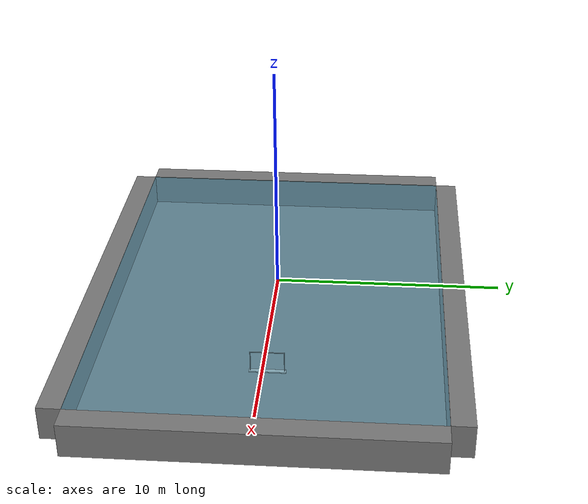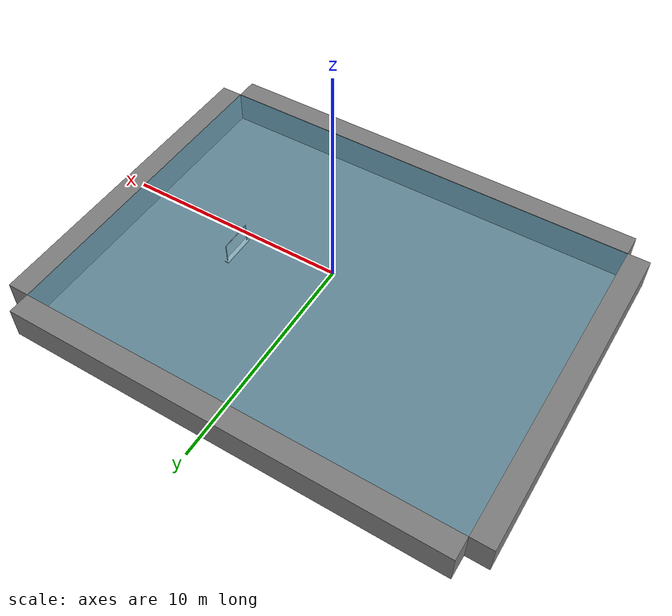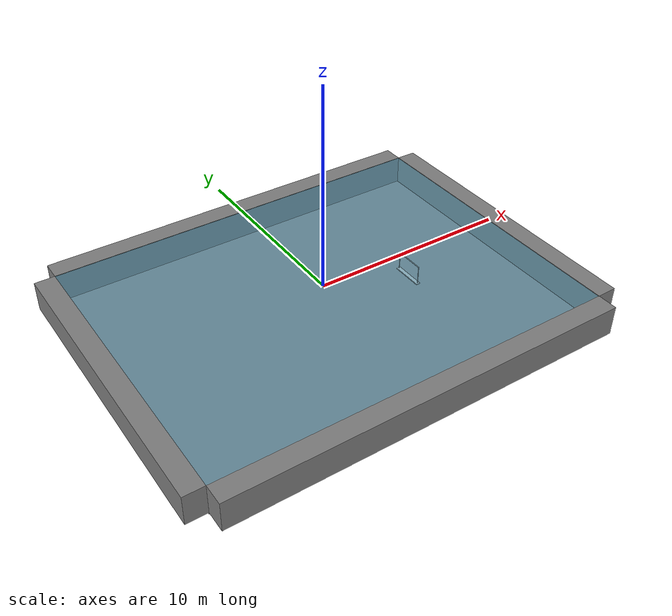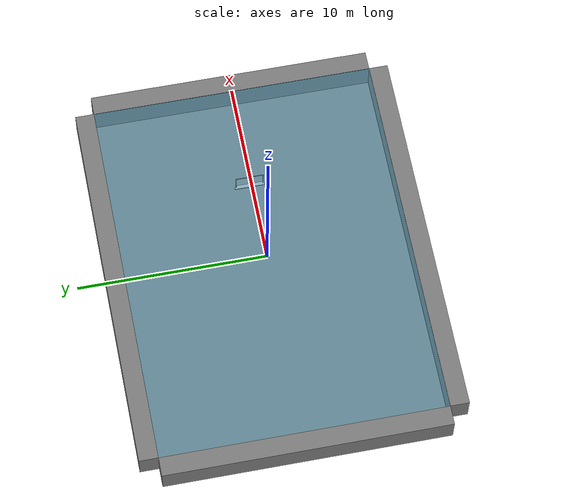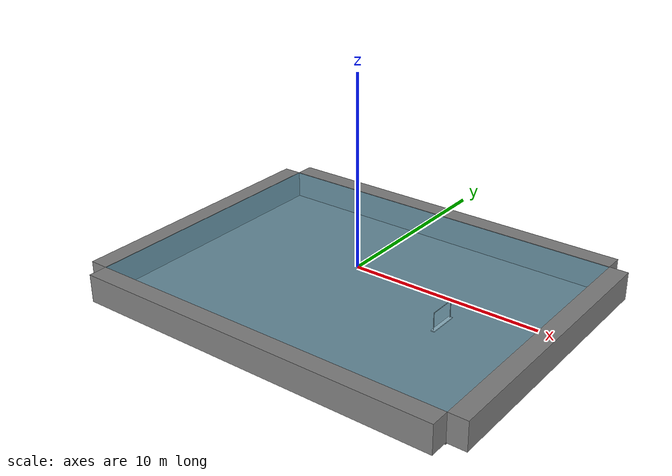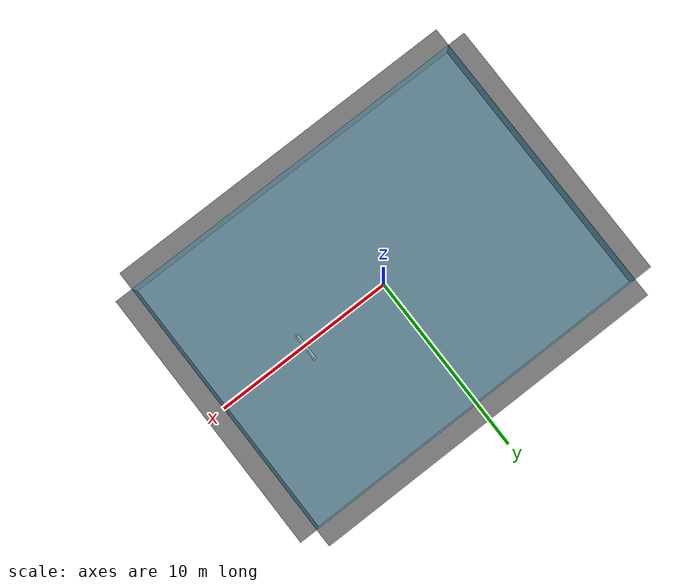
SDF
<?xml version="1.0" ?>
<sdf version="1.6">
  <world name="ocean">

    <scene>
      <sky></sky>
      <ambient>0.525 0.96 0.96 0.025</ambient>
      <background>0.525 0.96 0.96 0.025</background>
      <grid>false</grid>
      <fog>
        <color>0.525 0.96 0.96 0.2</color>
        <type>linear</type>
        <density>0.02</density>
        <start>0.5</start>
        <end>20.0</end>
      </fog>
    </scene>

    <physics name="10ms" type="ode">
      <max_step_size>0.01</max_step_size>
      <real_time_factor>1.0</real_time_factor>
    </physics>
    <plugin
      filename="gz-sim-physics-system"
      name="gz::sim::systems::Physics">
    </plugin>

    <plugin
      filename="gz-sim-sensors-system"
      name="gz::sim::systems::Sensors">
      <render_engine>ogre2</render_engine>
    </plugin>

    <plugin
      filename="gz-sim-user-commands-system"
      name="gz::sim::systems::UserCommands">
    </plugin>
    <plugin
      filename="gz-sim-scene-broadcaster-system"
      name="gz::sim::systems::SceneBroadcaster">
    </plugin>

    <plugin
      filename="gz-sim-imu-system"
      name="gz::sim::systems::Imu">
    </plugin>

    <plugin filename="gz-sim-buoyancy-system"
        name="gz::sim::systems::Buoyancy">

        <graded_buoyancy>
          <default_density>1000</default_density>
          <density_change>
            <above_depth>0</above_depth>
            <density>1</density>
          </density_change>
      </graded_buoyancy>
    </plugin>

    <plugin
      filename="gz-sim-contact-system"
      name="gz::sim::systems::Contact">
    </plugin>

    <plugin
      filename="gz-sim-forcetorque-system"
      name="gz::sim::systems::ForceTorque">
    </plugin>

    <plugin
      filename="gz-sim-particle-emitter-system"
      name="gz::sim::systems::ParticleEmitter">
    </plugin>

    <light type="directional" name="sun">
      <cast_shadows>true</cast_shadows>
      <pose>0 0 5 0 0 0</pose>
      <diffuse>1 1 1 1</diffuse>
      <specular>0.5 0.5 0.5 1</specular>
      <attenuation>
        <range>1000</range>
        <constant>0.9</constant>
        <linear>0.01</linear>
        <quadratic>0.001</quadratic>
      </attenuation>
      <direction>-0.5 0.1 -0.9</direction>
    </light>

    <model name="water_plane">
      <pose>0 0 0 0 0 0</pose>
      <static>true</static>
      <link name="link">
        <visual name="water_plane">
          <geometry>
            <plane>
              <size>20 15</size>
              <normal>0 0 1</normal>
            </plane>
          </geometry>
          <material>
        <!-- Soft blue-green water color -->
            <ambient>0.2 0.7 0.9 0.6</ambient>
            <diffuse>0.2 0.7 0.9 0.6</diffuse>
            <specular>0.1 0.1 0.1 1.0</specular>
          </material>
        </visual>
      </link>
    </model>

    <model name="fwd_wall">
      <pose>10.5 0 -0.75 0 0 0</pose>
      <static>true</static>
      <link name="fwd_link">
        <visual name="fwd_visual">
          <geometry>
              <box>
                <size>1.0 15.0 1.5</size>
              </box>
          </geometry>
          <material>
            <ambient>0.5 0.5 0.5 1</ambient>
            <diffuse>0.5 0.5 0.5 1</diffuse>
            <specular>0.5 0.5 0.5 1</specular>
          </material>
        </visual>
      </link>
    </model>

    <model name="read_wall">
      <pose>-10.5 0 -0.75 0 0 0</pose>
      <static>true</static>
      <link name="rear_link">
        <visual name="read_visual">
          <geometry>
            <box>
              <size>1.0 15.0 1.5</size>
            </box>
          </geometry>
          <material>
            <ambient>0.5 0.5 0.5 1</ambient>
            <diffuse>0.5 0.5 0.5 1</diffuse>
            <specular>0.5 0.5 0.5 1</specular>
          </material>
        </visual>
      </link>
    </model>

    <model name="east_wall">
      <pose>0.0 -8 -0.75 0 0 0</pose>
      <static>true</static>
      <link name="east_wall">
        <visual name="east_wall_visual">
          <geometry>
              <box>
                <size>20.0 1.0 1.5</size>
              </box>
          </geometry>
          <material>
            <ambient>0.5 0.5 0.5 1</ambient>
            <diffuse>0.5 0.5 0.5 1</diffuse>
            <specular>0.5 0.5 0.5 1</specular>
          </material>
        </visual>
      </link>
    </model>

    <model name="west_wall">
      <pose>0 8 -0.75 0 0 0</pose>
      <static>true</static>
      <link name="west_wall">
        <visual name="west_wall_visual">
          <geometry>
            <box>
              <size>20.0 1.0 1.5</size>
            </box>
          </geometry>
          <material>
            <ambient>0.5 0.5 0.5 1</ambient>
            <diffuse>0.5 0.5 0.5 1</diffuse>
            <specular>0.5 0.5 0.5 1</specular>
          </material>
        </visual>
      </link>
    </model>

    <model name="pool_floor">
      <pose>0 0 -1.55 0 0 0</pose>
      <static>true</static>
      <link name="floor_plane">
        <visual name="floor_visual">
          <geometry>
            <box>
              <size>20 15.0 0.1</size>
            </box>
          </geometry>
          <material>
            <ambient>0.5 0.5 0.5 1</ambient>
            <diffuse>0.5 0.5 0.5 1</diffuse>
            <specular>0.5 0.5 0.5 1</specular>
          </material>
        </visual>
      </link>
    </model>

    <model name='many_colored_cube'>
      <pose> 5 0 -1.5 1.5707 0 0</pose>
      <static>true</static>
      <link name="cube">
          <visual name="cube_visual">
            <geometry>
              <mesh>
                <scale>10 10 10</scale>
                <uri>meshes/sauvc_gate/gate.obj</uri>
              </mesh>
            </geometry>
          </visual>
      </link>
    </model>

  </world>
</sdf>
